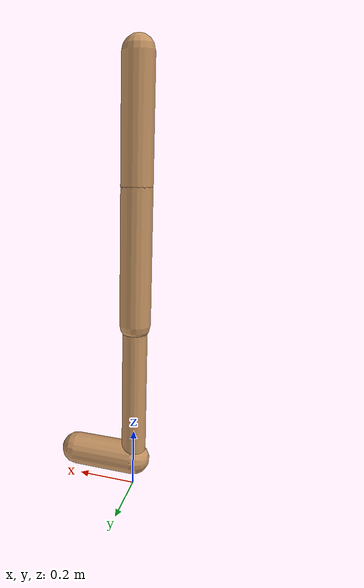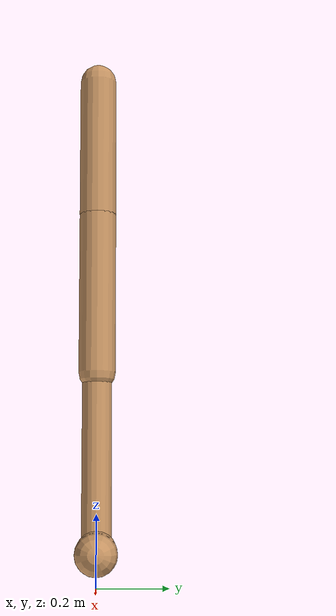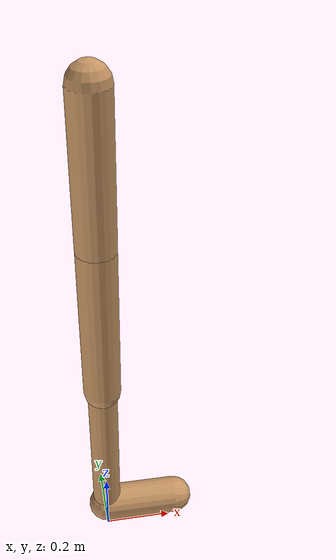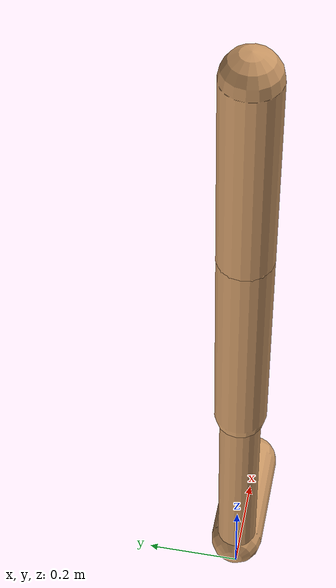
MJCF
<mujoco model="walker2d">
  <compiler angle="degree" coordinate="global" inertiafromgeom="true" />
  <default>
    <joint armature="0.01" damping=".1" limited="true" />
    <geom conaffinity="0" condim="3" contype="1" density="1000" friction="0.8 .1 .1" rgba="0.8 0.6 .4 1" />
  </default>
  <option integrator="RK4" timestep="0.002" />
  <worldbody>

    <body name="torso" pos="0 0 0.016480304868049918">
      <joint armature="0" axis="1 0 0" damping="0" limited="false" name="ignorex" pos="0 0 0" stiffness="0" type="slide" />
      <joint armature="0" axis="0 0 1" damping="0" limited="false" name="ignorez" pos="0 0 0" ref="1.25" stiffness="0" type="slide" />
      <joint armature="0" axis="0 1 0" damping="0" limited="false" name="ignorey" pos="0 0 0" stiffness="0" type="hinge" />
      <geom fromto="0 0 1.45 0 0 1.05" name="torso_geom" size="0.0521845594731855" type="capsule" />
      <body name="thigh">
        <joint axis="0 -1 0" name="thigh_joint" pos="0 0 1.05" range="-150 0" type="hinge" />
        <geom fromto="0.0 0.0 1.05 0.0 0.0 0.5921935397993447" name="thigh_geom" size="0.05198982537083102" type="capsule" />
        <body name="leg" pos="0.0 0.0 -0.00780646020065523">
          <joint axis="0 -1 0" name="leg_joint" pos="0 0 0.6" range="-150 0" type="hinge" />
          <geom fromto="0.0 0.0 0.6 0.0 0.0 0.09132615533260531" name="leg_geom" size="0.04159186029666482" type="capsule" />
          <body name="foot" pos="0.0 0.0 -0.008673844667394695">
            <joint axis="0 -1 0" name="foot_joint" pos="0 0 0.1" range="-45 45" type="hinge" />
            <geom fromto="-0.0 0.0 0.1 0.212345420425311 0.0 0.1" name="foot_geom" size="0.05601427290911547" type="capsule" />
          </body>
        </body>
      </body>

      <body name="thigh_left">
        <joint axis="0 -1 0" name="thigh_left_joint" pos="0 0 1.05" range="-150 0" type="hinge" />
        <geom fromto="0.0 0.0 1.05 0.0 0.0 0.5921935397993447" name="thigh_left_geom" rgba=".7 .3 .6 1" size="0.05198982537083102" type="capsule" />
        <body name="leg_left" pos="0.0 0.0 -0.00780646020065523">
          <joint axis="0 -1 0" name="leg_left_joint" pos="0 0 0.6" range="-150 0" type="hinge" />
          <geom fromto="0.0 0.0 0.6 0.0 0.0 0.09132615533260531" name="leg_left_geom" rgba=".7 .3 .6 1" size="0.04159186029666482" type="capsule" />
          <body name="foot_left" pos="0.0 0.0 -0.008673844667394695">
            <joint axis="0 -1 0" name="foot_left_joint" pos="0 0 0.1" range="-45 45" type="hinge" />
            <geom fromto="-0.0 0.0 0.1 0.212345420425311 0.0 0.1" name="foot_left_geom" rgba=".7 .3 .6 1" size="0.05601427290911547" type="capsule" />
          </body>
        </body>
      </body>
    </body>
  </worldbody>
  <actuator>

    <motor ctrllimited="true" ctrlrange="-1.0 1.0" gear="100" joint="thigh_joint" />
    <motor ctrllimited="true" ctrlrange="-1.0 1.0" gear="100" joint="leg_joint" />
    <motor ctrllimited="true" ctrlrange="-1.0 1.0" gear="100" joint="foot_joint" />
    <motor ctrllimited="true" ctrlrange="-1.0 1.0" gear="100" joint="thigh_left_joint" />
    <motor ctrllimited="true" ctrlrange="-1.0 1.0" gear="100" joint="leg_left_joint" />
    <motor ctrllimited="true" ctrlrange="-1.0 1.0" gear="100" joint="foot_left_joint" />

  </actuator>
</mujoco>
